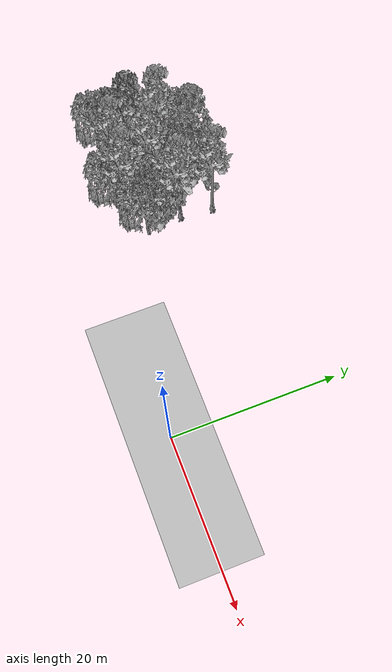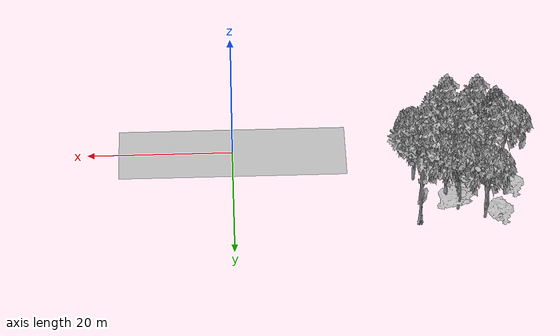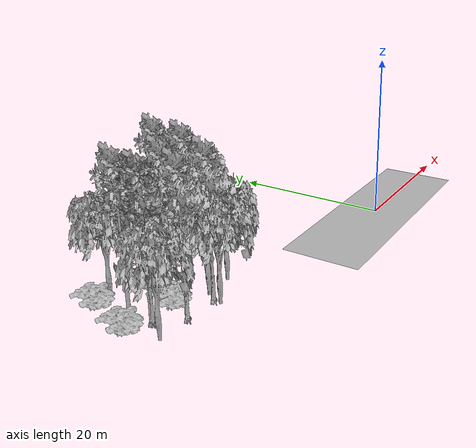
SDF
<sdf version="1.7">
 <world name="default">
  <model name="ground_plane">
   <static>1</static>
   <link name="link">
    <collision name="collision">
     <pose>-50 0 0 0 -0 0</pose>
     <geometry><plane><normal>0 0 1</normal><size>100 100</size></plane></geometry>
     <surface><contact><ode><min_depth>0.01</min_depth><max_vel>0</max_vel></ode></contact></surface>
    </collision>
    <visual name="grass">
     <cast_shadows>0</cast_shadows>
     <geometry>
      <mesh>
       <scale>0.5814285714285714 0.18142857142857144 0.1</scale>
       <uri>file://grass_plane/meshes/grass_plane.dae</uri>
      </mesh>
     </geometry>
    </visual>
   </link>
  </model>
  <model name="Tree 11">
   <static>1</static>
   <pose>-29.711299888890707 11.643784595468148 0 1.57079 -0 0</pose>
   <link name="link">
    <collision name="collision">
     <geometry><mesh><scale>3 2 3</scale><uri>model://tree_3/meshes/tree_3.obj</uri></mesh></geometry>
    </collision>
    <visual name="visual">
     <geometry><mesh><scale>3 2 3</scale><uri>model://tree_3/meshes/tree_3.obj</uri></mesh></geometry>
    </visual>
   </link>
  </model>
  <model name="Tree 34">
   <static>1</static>
   <pose>-27.007473826532312 6.812404441155536 0 1.57079 -0 0</pose>
   <link name="link">
    <collision name="collision">
     <geometry><mesh><scale>3.5 5 3.5</scale><uri>model://tree_2/meshes/tree_2.obj</uri></mesh></geometry>
    </collision>
    <visual name="visual">
     <geometry><mesh><scale>3.5 5 3.5</scale><uri>model://tree_2/meshes/tree_2.obj</uri></mesh></geometry>
    </visual>
   </link>
  </model>
  <model name="Tree 87">
   <static>1</static>
   <pose>-25.42468141921665 10.666588720986113 0 1.57079 -0 0</pose>
   <link name="link">
    <collision name="collision">
     <geometry><mesh><scale>3.5 5 3.5</scale><uri>model://tree_9/meshes/tree_9.obj</uri></mesh></geometry>
    </collision>
    <visual name="visual">
     <geometry><mesh><scale>3.5 5 3.5</scale><uri>model://tree_9/meshes/tree_9.obj</uri></mesh></geometry>
    </visual>
   </link>
  </model>
  <model name="Tree 90">
   <static>1</static>
   <pose>-37.94634690934134 9.079774527803607 0 1.57079 -0 0</pose>
   <link name="link">
    <collision name="collision">
     <geometry><mesh><scale>4 2.5 4</scale><uri>model://tree_1/meshes/tree_1.obj</uri></mesh></geometry>
    </collision>
    <visual name="visual">
     <geometry><mesh><scale>4 2.5 4</scale><uri>model://tree_1/meshes/tree_1.obj</uri></mesh></geometry>
    </visual>
   </link>
  </model>
  <model name="Tree 135">
   <static>1</static>
   <pose>-28.497962263818074 5.374746039890805 0 1.57079 -0 0</pose>
   <link name="link">
    <collision name="collision">
     <geometry><mesh><scale>3.5 5 3.5</scale><uri>model://tree_9/meshes/tree_9.obj</uri></mesh></geometry>
    </collision>
    <visual name="visual">
     <geometry><mesh><scale>3.5 5 3.5</scale><uri>model://tree_9/meshes/tree_9.obj</uri></mesh></geometry>
    </visual>
   </link>
  </model>
  <model name="Tree 205">
   <static>1</static>
   <pose>-36.96279009326166 5.2509934017291044 0 1.57079 -0 0</pose>
   <link name="link">
    <collision name="collision">
     <geometry><mesh><scale>3.5 5 3.5</scale><uri>model://tree_2/meshes/tree_2.obj</uri></mesh></geometry>
    </collision>
    <visual name="visual">
     <geometry><mesh><scale>3.5 5 3.5</scale><uri>model://tree_2/meshes/tree_2.obj</uri></mesh></geometry>
    </visual>
   </link>
  </model>
  <model name="Tree 211">
   <static>1</static>
   <pose>-32.132505329443276 7.965798762588506 0 1.57079 -0 0</pose>
   <link name="link">
    <collision name="collision">
     <geometry><mesh><scale>4 2.5 4</scale><uri>model://tree_1/meshes/tree_1.obj</uri></mesh></geometry>
    </collision>
    <visual name="visual">
     <geometry><mesh><scale>4 2.5 4</scale><uri>model://tree_1/meshes/tree_1.obj</uri></mesh></geometry>
    </visual>
   </link>
  </model>
  <model name="Tree 234">
   <static>1</static>
   <pose>-24.76605814054048 6.336172286438327 0 1.57079 -0 0</pose>
   <link name="link">
    <collision name="collision">
     <geometry><mesh><scale>3.5 5 3.5</scale><uri>model://tree_2/meshes/tree_2.obj</uri></mesh></geometry>
    </collision>
    <visual name="visual">
     <geometry><mesh><scale>3.5 5 3.5</scale><uri>model://tree_2/meshes/tree_2.obj</uri></mesh></geometry>
    </visual>
   </link>
  </model>
  <model name="Tree 248">
   <static>1</static>
   <pose>-30.514986630638248 9.179834639559001 0 1.57079 -0 0</pose>
   <link name="link">
    <collision name="collision">
     <geometry><mesh><scale>3.5 5 3.5</scale><uri>model://tree_9/meshes/tree_9.obj</uri></mesh></geometry>
    </collision>
    <visual name="visual">
     <geometry><mesh><scale>3.5 5 3.5</scale><uri>model://tree_9/meshes/tree_9.obj</uri></mesh></geometry>
    </visual>
   </link>
  </model>
  <model name="Tree 252">
   <static>1</static>
   <pose>-25.92499893012143 8.162024074097424 0 1.57079 -0 0</pose>
   <link name="link">
    <collision name="collision">
     <geometry><mesh><scale>3.5 5 3.5</scale><uri>model://tree_2/meshes/tree_2.obj</uri></mesh></geometry>
    </collision>
    <visual name="visual">
     <geometry><mesh><scale>3.5 5 3.5</scale><uri>model://tree_2/meshes/tree_2.obj</uri></mesh></geometry>
    </visual>
   </link>
  </model>
  <model name="Tree 264">
   <static>1</static>
   <pose>-30.323316077405472 10.618715486717289 0 1.57079 -0 0</pose>
   <link name="link">
    <collision name="collision">
     <geometry><mesh><scale>3.5 5 3.5</scale><uri>model://tree_2/meshes/tree_2.obj</uri></mesh></geometry>
    </collision>
    <visual name="visual">
     <geometry><mesh><scale>3.5 5 3.5</scale><uri>model://tree_2/meshes/tree_2.obj</uri></mesh></geometry>
    </visual>
   </link>
  </model>
  <model name="Tree 289">
   <static>1</static>
   <pose>-28.21641968315103 6.170617716658974 0 1.57079 -0 0</pose>
   <link name="link">
    <collision name="collision">
     <geometry><mesh><scale>3.5 5 3.5</scale><uri>model://tree_2/meshes/tree_2.obj</uri></mesh></geometry>
    </collision>
    <visual name="visual">
     <geometry><mesh><scale>3.5 5 3.5</scale><uri>model://tree_2/meshes/tree_2.obj</uri></mesh></geometry>
    </visual>
   </link>
  </model>
  <model name="Tree 367">
   <static>1</static>
   <pose>-29.042925844517267 4.130410200829939 0 1.57079 -0 0</pose>
   <link name="link">
    <collision name="collision">
     <geometry><mesh><scale>3.5 5 3.5</scale><uri>model://tree_2/meshes/tree_2.obj</uri></mesh></geometry>
    </collision>
    <visual name="visual">
     <geometry><mesh><scale>3.5 5 3.5</scale><uri>model://tree_2/meshes/tree_2.obj</uri></mesh></geometry>
    </visual>
   </link>
  </model>
  <model name="Tree 385">
   <static>1</static>
   <pose>-34.83302767150242 8.08678236731446 0 1.57079 -0 0</pose>
   <link name="link">
    <collision name="collision">
     <geometry><mesh><scale>3.5 5 3.5</scale><uri>model://tree_9/meshes/tree_9.obj</uri></mesh></geometry>
    </collision>
    <visual name="visual">
     <geometry><mesh><scale>3.5 5 3.5</scale><uri>model://tree_9/meshes/tree_9.obj</uri></mesh></geometry>
    </visual>
   </link>
  </model>
  <model name="Tree 390">
   <static>1</static>
   <pose>-32.572755414633605 5.494537805074032 0 1.57079 -0 0</pose>
   <link name="link">
    <collision name="collision">
     <geometry><mesh><scale>3.5 5 3.5</scale><uri>model://tree_9/meshes/tree_9.obj</uri></mesh></geometry>
    </collision>
    <visual name="visual">
     <geometry><mesh><scale>3.5 5 3.5</scale><uri>model://tree_9/meshes/tree_9.obj</uri></mesh></geometry>
    </visual>
   </link>
  </model>
  <model name="Tree 423">
   <static>1</static>
   <pose>-25.093786116705754 14.67134884464673 0 1.57079 -0 0</pose>
   <link name="link">
    <collision name="collision">
     <geometry><mesh><scale>3.5 5 3.5</scale><uri>model://tree_9/meshes/tree_9.obj</uri></mesh></geometry>
    </collision>
    <visual name="visual">
     <geometry><mesh><scale>3.5 5 3.5</scale><uri>model://tree_9/meshes/tree_9.obj</uri></mesh></geometry>
    </visual>
   </link>
  </model>
  <model name="Tree 444">
   <static>1</static>
   <pose>-30.4620797700059 12.551005585247196 0 1.57079 -0 0</pose>
   <link name="link">
    <collision name="collision">
     <geometry><mesh><scale>3.5 5 3.5</scale><uri>model://tree_2/meshes/tree_2.obj</uri></mesh></geometry>
    </collision>
    <visual name="visual">
     <geometry><mesh><scale>3.5 5 3.5</scale><uri>model://tree_2/meshes/tree_2.obj</uri></mesh></geometry>
    </visual>
   </link>
  </model>
  <model name="Tree 445">
   <static>1</static>
   <pose>-34.77818761292674 8.015321515235783 0 1.57079 -0 0</pose>
   <link name="link">
    <collision name="collision">
     <geometry><mesh><scale>3.5 5 3.5</scale><uri>model://tree_9/meshes/tree_9.obj</uri></mesh></geometry>
    </collision>
    <visual name="visual">
     <geometry><mesh><scale>3.5 5 3.5</scale><uri>model://tree_9/meshes/tree_9.obj</uri></mesh></geometry>
    </visual>
   </link>
  </model>
  <model name="Tree 451">
   <static>1</static>
   <pose>-33.97936021190013 14.320021720417458 0 1.57079 -0 0</pose>
   <link name="link">
    <collision name="collision">
     <geometry><mesh><scale>3.5 5 3.5</scale><uri>model://tree_2/meshes/tree_2.obj</uri></mesh></geometry>
    </collision>
    <visual name="visual">
     <geometry><mesh><scale>3.5 5 3.5</scale><uri>model://tree_2/meshes/tree_2.obj</uri></mesh></geometry>
    </visual>
   </link>
  </model>
  <model name="Tree 480">
   <static>1</static>
   <pose>-28.676923689414643 11.815571616755708 0 1.57079 -0 0</pose>
   <link name="link">
    <collision name="collision">
     <geometry><mesh><scale>3.5 5 3.5</scale><uri>model://tree_2/meshes/tree_2.obj</uri></mesh></geometry>
    </collision>
    <visual name="visual">
     <geometry><mesh><scale>3.5 5 3.5</scale><uri>model://tree_2/meshes/tree_2.obj</uri></mesh></geometry>
    </visual>
   </link>
  </model>
  <model name="Tree 496">
   <static>1</static>
   <pose>-34.384498612694955 11.45449985688802 0 1.57079 -0 0</pose>
   <link name="link">
    <collision name="collision">
     <geometry><mesh><scale>3.5 5 3.5</scale><uri>model://tree_9/meshes/tree_9.obj</uri></mesh></geometry>
    </collision>
    <visual name="visual">
     <geometry><mesh><scale>3.5 5 3.5</scale><uri>model://tree_9/meshes/tree_9.obj</uri></mesh></geometry>
    </visual>
   </link>
  </model>
  <model name="Tree 504">
   <static>1</static>
   <pose>-31.332916111693706 10.152458604003861 0 1.57079 -0 0</pose>
   <link name="link">
    <collision name="collision">
     <geometry><mesh><scale>4 2.5 4</scale><uri>model://tree_1/meshes/tree_1.obj</uri></mesh></geometry>
    </collision>
    <visual name="visual">
     <geometry><mesh><scale>4 2.5 4</scale><uri>model://tree_1/meshes/tree_1.obj</uri></mesh></geometry>
    </visual>
   </link>
  </model>
  <model name="Tree 539">
   <static>1</static>
   <pose>-36.074629945437486 14.5270496170093 0 1.57079 -0 0</pose>
   <link name="link">
    <collision name="collision">
     <geometry><mesh><scale>4 2.5 4</scale><uri>model://tree_1/meshes/tree_1.obj</uri></mesh></geometry>
    </collision>
    <visual name="visual">
     <geometry><mesh><scale>4 2.5 4</scale><uri>model://tree_1/meshes/tree_1.obj</uri></mesh></geometry>
    </visual>
   </link>
  </model>
 </world>
</sdf>
